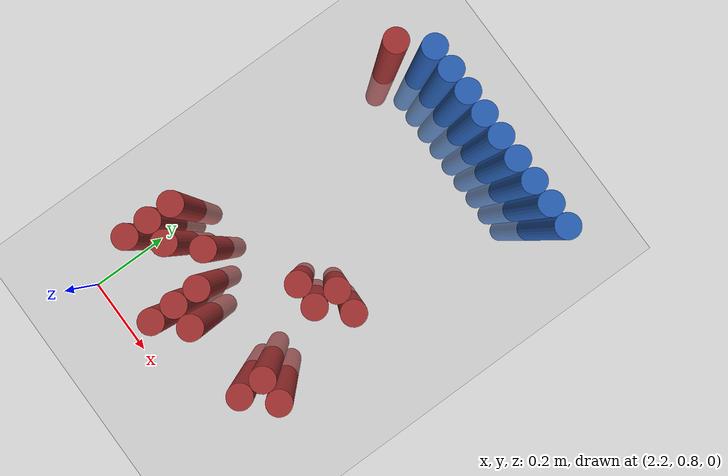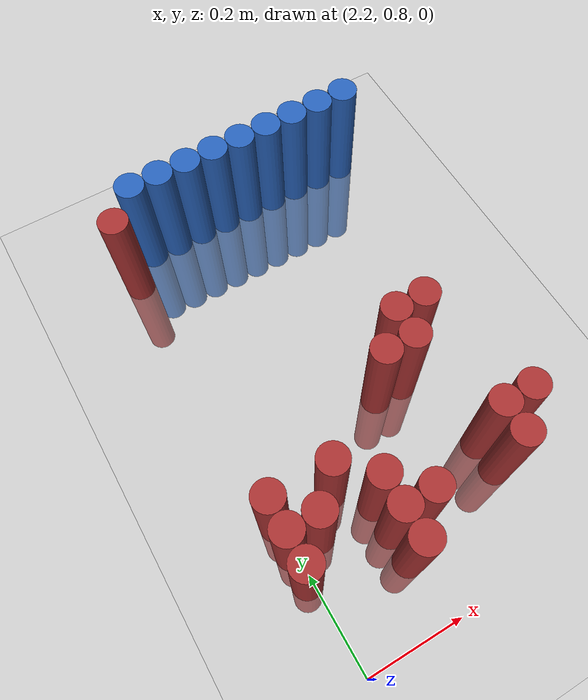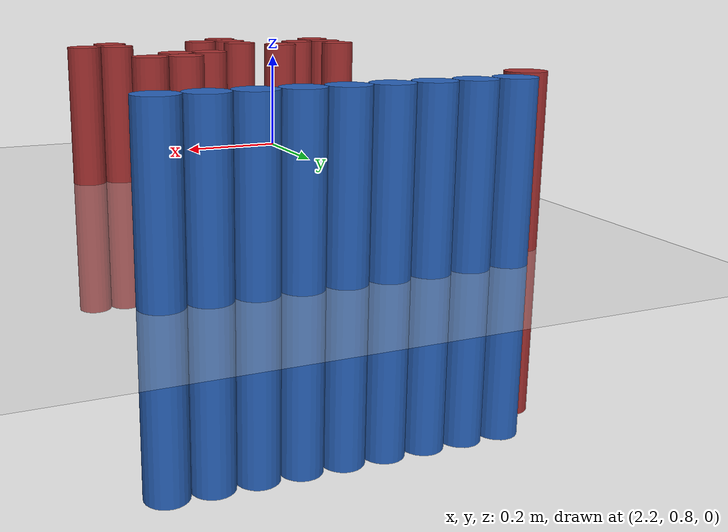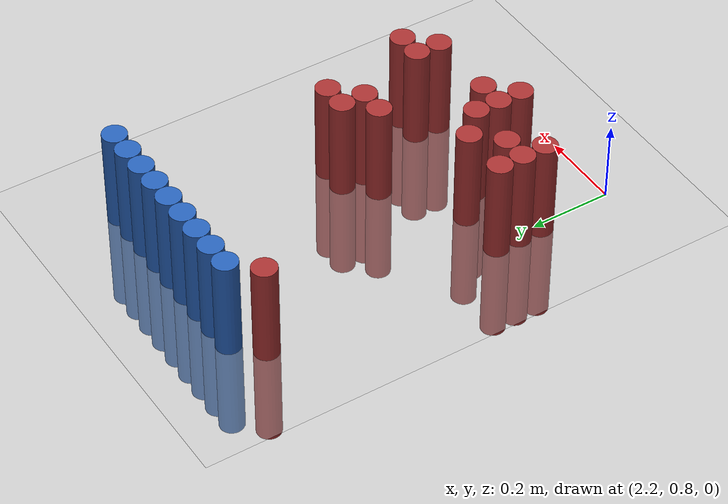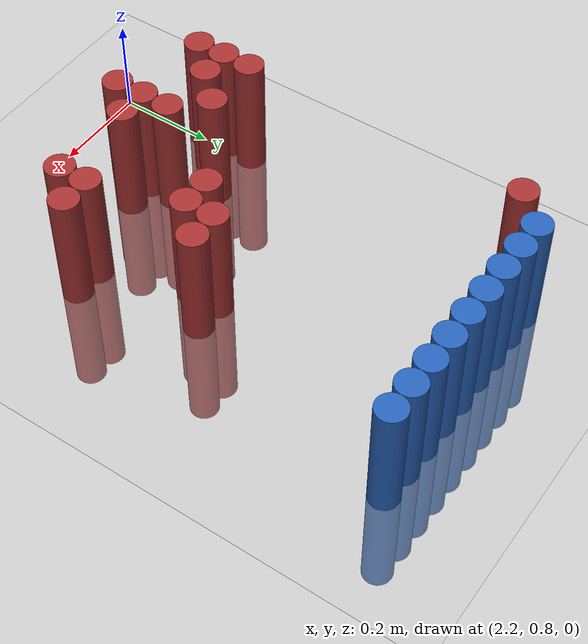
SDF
<sdf version="1.6">
 <world name="default">
  <model name="ground_plane">
   <static>1</static>
   <link name="link">
    <collision name="collision">
     <geometry><plane><normal>0 0 1</normal><size>100 100</size></plane></geometry>
     <surface><friction><ode><mu>100</mu><mu2>50</mu2></ode></friction></surface>
    </collision>
    <visual name="visual">
     <cast_shadows>0</cast_shadows>
     <geometry><plane><normal>0 0 1</normal><size>100 100</size></plane></geometry>
     <material>
      <script><uri>file://media/materials/scripts/gazebo.material</uri><name>Gazebo/Grey</name></script>
     </material>
    </visual>
   </link>
  </model>
  <model name="unit_cylinder_98">
   <static>1</static>
   <pose>2.250000 1.770000 0.000000 0.000000 0.000000 0.000000</pose>
   <link name="link">
    <inertial>
     <mass>1</mass>
     <inertia><ixx>0.145833</ixx><ixy>0</ixy><ixz>0</ixz><iyy>0.145833</iyy><iyz>0</iyz><izz>0.125</izz></inertia>
    </inertial>
    <collision name="collision">
     <geometry><cylinder><radius>0.030000</radius><length>0.5</length></cylinder></geometry>
    </collision>
    <visual name="visual">
     <geometry><cylinder><radius>0.030000</radius><length>0.5</length></cylinder></geometry>
     <material>
      <ambient>0.152000 0.379000 0.720000 1</ambient>
      <diffuse>0.152000 0.379000 0.720000 1</diffuse>
     </material>
     <material>
      <script><name>Gazebo/Grey</name><uri>file://media/materials/scripts/gazebo.material</uri></script>
     </material>
    </visual>
   </link>
  </model>
  <model name="unit_cylinder_99">
   <static>1</static>
   <pose>2.310000 1.770000 0.000000 0.000000 0.000000 0.000000</pose>
   <link name="link">
    <inertial>
     <mass>1</mass>
     <inertia><ixx>0.145833</ixx><ixy>0</ixy><ixz>0</ixz><iyy>0.145833</iyy><iyz>0</iyz><izz>0.125</izz></inertia>
    </inertial>
    <collision name="collision">
     <geometry><cylinder><radius>0.030000</radius><length>0.5</length></cylinder></geometry>
    </collision>
    <visual name="visual">
     <geometry><cylinder><radius>0.030000</radius><length>0.5</length></cylinder></geometry>
     <material>
      <ambient>0.152000 0.379000 0.720000 1</ambient>
      <diffuse>0.152000 0.379000 0.720000 1</diffuse>
     </material>
     <material>
      <script><name>Gazebo/Grey</name><uri>file://media/materials/scripts/gazebo.material</uri></script>
     </material>
    </visual>
   </link>
  </model>
  <model name="unit_cylinder_100">
   <static>1</static>
   <pose>2.370000 1.770000 0.000000 0.000000 0.000000 0.000000</pose>
   <link name="link">
    <inertial>
     <mass>1</mass>
     <inertia><ixx>0.145833</ixx><ixy>0</ixy><ixz>0</ixz><iyy>0.145833</iyy><iyz>0</iyz><izz>0.125</izz></inertia>
    </inertial>
    <collision name="collision">
     <geometry><cylinder><radius>0.030000</radius><length>0.5</length></cylinder></geometry>
    </collision>
    <visual name="visual">
     <geometry><cylinder><radius>0.030000</radius><length>0.5</length></cylinder></geometry>
     <material>
      <ambient>0.152000 0.379000 0.720000 1</ambient>
      <diffuse>0.152000 0.379000 0.720000 1</diffuse>
     </material>
     <material>
      <script><name>Gazebo/Grey</name><uri>file://media/materials/scripts/gazebo.material</uri></script>
     </material>
    </visual>
   </link>
  </model>
  <model name="unit_cylinder_101">
   <static>1</static>
   <pose>2.430000 1.770000 0.000000 0.000000 0.000000 0.000000</pose>
   <link name="link">
    <inertial>
     <mass>1</mass>
     <inertia><ixx>0.145833</ixx><ixy>0</ixy><ixz>0</ixz><iyy>0.145833</iyy><iyz>0</iyz><izz>0.125</izz></inertia>
    </inertial>
    <collision name="collision">
     <geometry><cylinder><radius>0.030000</radius><length>0.5</length></cylinder></geometry>
    </collision>
    <visual name="visual">
     <geometry><cylinder><radius>0.030000</radius><length>0.5</length></cylinder></geometry>
     <material>
      <ambient>0.152000 0.379000 0.720000 1</ambient>
      <diffuse>0.152000 0.379000 0.720000 1</diffuse>
     </material>
     <material>
      <script><name>Gazebo/Grey</name><uri>file://media/materials/scripts/gazebo.material</uri></script>
     </material>
    </visual>
   </link>
  </model>
  <model name="unit_cylinder_102">
   <static>1</static>
   <pose>2.490000 1.770000 0.000000 0.000000 0.000000 0.000000</pose>
   <link name="link">
    <inertial>
     <mass>1</mass>
     <inertia><ixx>0.145833</ixx><ixy>0</ixy><ixz>0</ixz><iyy>0.145833</iyy><iyz>0</iyz><izz>0.125</izz></inertia>
    </inertial>
    <collision name="collision">
     <geometry><cylinder><radius>0.030000</radius><length>0.5</length></cylinder></geometry>
    </collision>
    <visual name="visual">
     <geometry><cylinder><radius>0.030000</radius><length>0.5</length></cylinder></geometry>
     <material>
      <ambient>0.152000 0.379000 0.720000 1</ambient>
      <diffuse>0.152000 0.379000 0.720000 1</diffuse>
     </material>
     <material>
      <script><name>Gazebo/Grey</name><uri>file://media/materials/scripts/gazebo.material</uri></script>
     </material>
    </visual>
   </link>
  </model>
  <model name="unit_cylinder_103">
   <static>1</static>
   <pose>2.550000 1.770000 0.000000 0.000000 0.000000 0.000000</pose>
   <link name="link">
    <inertial>
     <mass>1</mass>
     <inertia><ixx>0.145833</ixx><ixy>0</ixy><ixz>0</ixz><iyy>0.145833</iyy><iyz>0</iyz><izz>0.125</izz></inertia>
    </inertial>
    <collision name="collision">
     <geometry><cylinder><radius>0.030000</radius><length>0.5</length></cylinder></geometry>
    </collision>
    <visual name="visual">
     <geometry><cylinder><radius>0.030000</radius><length>0.5</length></cylinder></geometry>
     <material>
      <ambient>0.152000 0.379000 0.720000 1</ambient>
      <diffuse>0.152000 0.379000 0.720000 1</diffuse>
     </material>
     <material>
      <script><name>Gazebo/Grey</name><uri>file://media/materials/scripts/gazebo.material</uri></script>
     </material>
    </visual>
   </link>
  </model>
  <model name="unit_cylinder_104">
   <static>1</static>
   <pose>2.610000 1.770000 0.000000 0.000000 0.000000 0.000000</pose>
   <link name="link">
    <inertial>
     <mass>1</mass>
     <inertia><ixx>0.145833</ixx><ixy>0</ixy><ixz>0</ixz><iyy>0.145833</iyy><iyz>0</iyz><izz>0.125</izz></inertia>
    </inertial>
    <collision name="collision">
     <geometry><cylinder><radius>0.030000</radius><length>0.5</length></cylinder></geometry>
    </collision>
    <visual name="visual">
     <geometry><cylinder><radius>0.030000</radius><length>0.5</length></cylinder></geometry>
     <material>
      <ambient>0.152000 0.379000 0.720000 1</ambient>
      <diffuse>0.152000 0.379000 0.720000 1</diffuse>
     </material>
     <material>
      <script><name>Gazebo/Grey</name><uri>file://media/materials/scripts/gazebo.material</uri></script>
     </material>
    </visual>
   </link>
  </model>
  <model name="unit_cylinder_105">
   <static>1</static>
   <pose>2.670000 1.770000 0.000000 0.000000 0.000000 0.000000</pose>
   <link name="link">
    <inertial>
     <mass>1</mass>
     <inertia><ixx>0.145833</ixx><ixy>0</ixy><ixz>0</ixz><iyy>0.145833</iyy><iyz>0</iyz><izz>0.125</izz></inertia>
    </inertial>
    <collision name="collision">
     <geometry><cylinder><radius>0.030000</radius><length>0.5</length></cylinder></geometry>
    </collision>
    <visual name="visual">
     <geometry><cylinder><radius>0.030000</radius><length>0.5</length></cylinder></geometry>
     <material>
      <ambient>0.152000 0.379000 0.720000 1</ambient>
      <diffuse>0.152000 0.379000 0.720000 1</diffuse>
     </material>
     <material>
      <script><name>Gazebo/Grey</name><uri>file://media/materials/scripts/gazebo.material</uri></script>
     </material>
    </visual>
   </link>
  </model>
  <model name="unit_cylinder_106">
   <static>1</static>
   <pose>2.730000 1.770000 0.000000 0.000000 0.000000 0.000000</pose>
   <link name="link">
    <inertial>
     <mass>1</mass>
     <inertia><ixx>0.145833</ixx><ixy>0</ixy><ixz>0</ixz><iyy>0.145833</iyy><iyz>0</iyz><izz>0.125</izz></inertia>
    </inertial>
    <collision name="collision">
     <geometry><cylinder><radius>0.030000</radius><length>0.5</length></cylinder></geometry>
    </collision>
    <visual name="visual">
     <geometry><cylinder><radius>0.030000</radius><length>0.5</length></cylinder></geometry>
     <material>
      <ambient>0.152000 0.379000 0.720000 1</ambient>
      <diffuse>0.152000 0.379000 0.720000 1</diffuse>
     </material>
     <material>
      <script><name>Gazebo/Grey</name><uri>file://media/materials/scripts/gazebo.material</uri></script>
     </material>
    </visual>
   </link>
  </model>
  <model name="unit_cylinder_127">
   <static>1</static>
   <pose>2.190000 1.710000 0.000000 0.000000 0.000000 0.000000</pose>
   <link name="link">
    <inertial>
     <mass>1</mass>
     <inertia><ixx>0.145833</ixx><ixy>0</ixy><ixz>0</ixz><iyy>0.145833</iyy><iyz>0</iyz><izz>0.125</izz></inertia>
    </inertial>
    <collision name="collision">
     <geometry><cylinder><radius>0.030000</radius><length>0.5</length></cylinder></geometry>
    </collision>
    <visual name="visual">
     <geometry><cylinder><radius>0.030000</radius><length>0.5</length></cylinder></geometry>
     <material>
      <ambient>0.648000 0.192000 0.192000 1</ambient>
      <diffuse>0.648000 0.192000 0.192000 1</diffuse>
     </material>
     <material>
      <script><name>Gazebo/Grey</name><uri>file://media/materials/scripts/gazebo.material</uri></script>
     </material>
    </visual>
   </link>
  </model>
  <model name="unit_cylinder_129">
   <static>1</static>
   <pose>2.550000 1.290000 0.000000 0.000000 0.000000 0.000000</pose>
   <link name="link">
    <inertial>
     <mass>1</mass>
     <inertia><ixx>0.145833</ixx><ixy>0</ixy><ixz>0</ixz><iyy>0.145833</iyy><iyz>0</iyz><izz>0.125</izz></inertia>
    </inertial>
    <collision name="collision">
     <geometry><cylinder><radius>0.030000</radius><length>0.5</length></cylinder></geometry>
    </collision>
    <visual name="visual">
     <geometry><cylinder><radius>0.030000</radius><length>0.5</length></cylinder></geometry>
     <material>
      <ambient>0.648000 0.192000 0.192000 1</ambient>
      <diffuse>0.648000 0.192000 0.192000 1</diffuse>
     </material>
     <material>
      <script><name>Gazebo/Grey</name><uri>file://media/materials/scripts/gazebo.material</uri></script>
     </material>
    </visual>
   </link>
  </model>
  <model name="unit_cylinder_130">
   <static>1</static>
   <pose>2.610000 1.290000 0.000000 0.000000 0.000000 0.000000</pose>
   <link name="link">
    <inertial>
     <mass>1</mass>
     <inertia><ixx>0.145833</ixx><ixy>0</ixy><ixz>0</ixz><iyy>0.145833</iyy><iyz>0</iyz><izz>0.125</izz></inertia>
    </inertial>
    <collision name="collision">
     <geometry><cylinder><radius>0.030000</radius><length>0.5</length></cylinder></geometry>
    </collision>
    <visual name="visual">
     <geometry><cylinder><radius>0.030000</radius><length>0.5</length></cylinder></geometry>
     <material>
      <ambient>0.648000 0.192000 0.192000 1</ambient>
      <diffuse>0.648000 0.192000 0.192000 1</diffuse>
     </material>
     <material>
      <script><name>Gazebo/Grey</name><uri>file://media/materials/scripts/gazebo.material</uri></script>
     </material>
    </visual>
   </link>
  </model>
  <model name="unit_cylinder_131">
   <static>1</static>
   <pose>2.490000 1.230000 0.000000 0.000000 0.000000 0.000000</pose>
   <link name="link">
    <inertial>
     <mass>1</mass>
     <inertia><ixx>0.145833</ixx><ixy>0</ixy><ixz>0</ixz><iyy>0.145833</iyy><iyz>0</iyz><izz>0.125</izz></inertia>
    </inertial>
    <collision name="collision">
     <geometry><cylinder><radius>0.030000</radius><length>0.5</length></cylinder></geometry>
    </collision>
    <visual name="visual">
     <geometry><cylinder><radius>0.030000</radius><length>0.5</length></cylinder></geometry>
     <material>
      <ambient>0.648000 0.192000 0.192000 1</ambient>
      <diffuse>0.648000 0.192000 0.192000 1</diffuse>
     </material>
     <material>
      <script><name>Gazebo/Grey</name><uri>file://media/materials/scripts/gazebo.material</uri></script>
     </material>
    </visual>
   </link>
  </model>
  <model name="unit_cylinder_132">
   <static>1</static>
   <pose>2.550000 1.230000 0.000000 0.000000 0.000000 0.000000</pose>
   <link name="link">
    <inertial>
     <mass>1</mass>
     <inertia><ixx>0.145833</ixx><ixy>0</ixy><ixz>0</ixz><iyy>0.145833</iyy><iyz>0</iyz><izz>0.125</izz></inertia>
    </inertial>
    <collision name="collision">
     <geometry><cylinder><radius>0.030000</radius><length>0.5</length></cylinder></geometry>
    </collision>
    <visual name="visual">
     <geometry><cylinder><radius>0.030000</radius><length>0.5</length></cylinder></geometry>
     <material>
      <ambient>0.648000 0.192000 0.192000 1</ambient>
      <diffuse>0.648000 0.192000 0.192000 1</diffuse>
     </material>
     <material>
      <script><name>Gazebo/Grey</name><uri>file://media/materials/scripts/gazebo.material</uri></script>
     </material>
    </visual>
   </link>
  </model>
  <model name="unit_cylinder_133">
   <static>1</static>
   <pose>2.190000 1.110000 0.000000 0.000000 0.000000 0.000000</pose>
   <link name="link">
    <inertial>
     <mass>1</mass>
     <inertia><ixx>0.145833</ixx><ixy>0</ixy><ixz>0</ixz><iyy>0.145833</iyy><iyz>0</iyz><izz>0.125</izz></inertia>
    </inertial>
    <collision name="collision">
     <geometry><cylinder><radius>0.030000</radius><length>0.5</length></cylinder></geometry>
    </collision>
    <visual name="visual">
     <geometry><cylinder><radius>0.030000</radius><length>0.5</length></cylinder></geometry>
     <material>
      <ambient>0.648000 0.192000 0.192000 1</ambient>
      <diffuse>0.648000 0.192000 0.192000 1</diffuse>
     </material>
     <material>
      <script><name>Gazebo/Grey</name><uri>file://media/materials/scripts/gazebo.material</uri></script>
     </material>
    </visual>
   </link>
  </model>
  <model name="unit_cylinder_134">
   <static>1</static>
   <pose>2.310000 1.110000 0.000000 0.000000 0.000000 0.000000</pose>
   <link name="link">
    <inertial>
     <mass>1</mass>
     <inertia><ixx>0.145833</ixx><ixy>0</ixy><ixz>0</ixz><iyy>0.145833</iyy><iyz>0</iyz><izz>0.125</izz></inertia>
    </inertial>
    <collision name="collision">
     <geometry><cylinder><radius>0.030000</radius><length>0.5</length></cylinder></geometry>
    </collision>
    <visual name="visual">
     <geometry><cylinder><radius>0.030000</radius><length>0.5</length></cylinder></geometry>
     <material>
      <ambient>0.648000 0.192000 0.192000 1</ambient>
      <diffuse>0.648000 0.192000 0.192000 1</diffuse>
     </material>
     <material>
      <script><name>Gazebo/Grey</name><uri>file://media/materials/scripts/gazebo.material</uri></script>
     </material>
    </visual>
   </link>
  </model>
  <model name="unit_cylinder_135">
   <static>1</static>
   <pose>2.190000 1.050000 0.000000 0.000000 0.000000 0.000000</pose>
   <link name="link">
    <inertial>
     <mass>1</mass>
     <inertia><ixx>0.145833</ixx><ixy>0</ixy><ixz>0</ixz><iyy>0.145833</iyy><iyz>0</iyz><izz>0.125</izz></inertia>
    </inertial>
    <collision name="collision">
     <geometry><cylinder><radius>0.030000</radius><length>0.5</length></cylinder></geometry>
    </collision>
    <visual name="visual">
     <geometry><cylinder><radius>0.030000</radius><length>0.5</length></cylinder></geometry>
     <material>
      <ambient>0.648000 0.192000 0.192000 1</ambient>
      <diffuse>0.648000 0.192000 0.192000 1</diffuse>
     </material>
     <material>
      <script><name>Gazebo/Grey</name><uri>file://media/materials/scripts/gazebo.material</uri></script>
     </material>
    </visual>
   </link>
  </model>
  <model name="unit_cylinder_136">
   <static>1</static>
   <pose>2.250000 1.050000 0.000000 0.000000 0.000000 0.000000</pose>
   <link name="link">
    <inertial>
     <mass>1</mass>
     <inertia><ixx>0.145833</ixx><ixy>0</ixy><ixz>0</ixz><iyy>0.145833</iyy><iyz>0</iyz><izz>0.125</izz></inertia>
    </inertial>
    <collision name="collision">
     <geometry><cylinder><radius>0.030000</radius><length>0.5</length></cylinder></geometry>
    </collision>
    <visual name="visual">
     <geometry><cylinder><radius>0.030000</radius><length>0.5</length></cylinder></geometry>
     <material>
      <ambient>0.648000 0.192000 0.192000 1</ambient>
      <diffuse>0.648000 0.192000 0.192000 1</diffuse>
     </material>
     <material>
      <script><name>Gazebo/Grey</name><uri>file://media/materials/scripts/gazebo.material</uri></script>
     </material>
    </visual>
   </link>
  </model>
  <model name="unit_cylinder_137">
   <static>1</static>
   <pose>2.370000 1.050000 0.000000 0.000000 0.000000 0.000000</pose>
   <link name="link">
    <inertial>
     <mass>1</mass>
     <inertia><ixx>0.145833</ixx><ixy>0</ixy><ixz>0</ixz><iyy>0.145833</iyy><iyz>0</iyz><izz>0.125</izz></inertia>
    </inertial>
    <collision name="collision">
     <geometry><cylinder><radius>0.030000</radius><length>0.5</length></cylinder></geometry>
    </collision>
    <visual name="visual">
     <geometry><cylinder><radius>0.030000</radius><length>0.5</length></cylinder></geometry>
     <material>
      <ambient>0.648000 0.192000 0.192000 1</ambient>
      <diffuse>0.648000 0.192000 0.192000 1</diffuse>
     </material>
     <material>
      <script><name>Gazebo/Grey</name><uri>file://media/materials/scripts/gazebo.material</uri></script>
     </material>
    </visual>
   </link>
  </model>
  <model name="unit_cylinder_138">
   <static>1</static>
   <pose>2.610000 1.050000 0.000000 0.000000 0.000000 0.000000</pose>
   <link name="link">
    <inertial>
     <mass>1</mass>
     <inertia><ixx>0.145833</ixx><ixy>0</ixy><ixz>0</ixz><iyy>0.145833</iyy><iyz>0</iyz><izz>0.125</izz></inertia>
    </inertial>
    <collision name="collision">
     <geometry><cylinder><radius>0.030000</radius><length>0.5</length></cylinder></geometry>
    </collision>
    <visual name="visual">
     <geometry><cylinder><radius>0.030000</radius><length>0.5</length></cylinder></geometry>
     <material>
      <ambient>0.648000 0.192000 0.192000 1</ambient>
      <diffuse>0.648000 0.192000 0.192000 1</diffuse>
     </material>
     <material>
      <script><name>Gazebo/Grey</name><uri>file://media/materials/scripts/gazebo.material</uri></script>
     </material>
    </visual>
   </link>
  </model>
  <model name="unit_cylinder_139">
   <static>1</static>
   <pose>2.670000 1.050000 0.000000 0.000000 0.000000 0.000000</pose>
   <link name="link">
    <inertial>
     <mass>1</mass>
     <inertia><ixx>0.145833</ixx><ixy>0</ixy><ixz>0</ixz><iyy>0.145833</iyy><iyz>0</iyz><izz>0.125</izz></inertia>
    </inertial>
    <collision name="collision">
     <geometry><cylinder><radius>0.030000</radius><length>0.5</length></cylinder></geometry>
    </collision>
    <visual name="visual">
     <geometry><cylinder><radius>0.030000</radius><length>0.5</length></cylinder></geometry>
     <material>
      <ambient>0.648000 0.192000 0.192000 1</ambient>
      <diffuse>0.648000 0.192000 0.192000 1</diffuse>
     </material>
     <material>
      <script><name>Gazebo/Grey</name><uri>file://media/materials/scripts/gazebo.material</uri></script>
     </material>
    </visual>
   </link>
  </model>
  <model name="unit_cylinder_143">
   <static>1</static>
   <pose>2.190000 0.990000 0.000000 0.000000 0.000000 0.000000</pose>
   <link name="link">
    <inertial>
     <mass>1</mass>
     <inertia><ixx>0.145833</ixx><ixy>0</ixy><ixz>0</ixz><iyy>0.145833</iyy><iyz>0</iyz><izz>0.125</izz></inertia>
    </inertial>
    <collision name="collision">
     <geometry><cylinder><radius>0.030000</radius><length>0.5</length></cylinder></geometry>
    </collision>
    <visual name="visual">
     <geometry><cylinder><radius>0.030000</radius><length>0.5</length></cylinder></geometry>
     <material>
      <ambient>0.648000 0.192000 0.192000 1</ambient>
      <diffuse>0.648000 0.192000 0.192000 1</diffuse>
     </material>
     <material>
      <script><name>Gazebo/Grey</name><uri>file://media/materials/scripts/gazebo.material</uri></script>
     </material>
    </visual>
   </link>
  </model>
  <model name="unit_cylinder_144">
   <static>1</static>
   <pose>2.370000 0.990000 0.000000 0.000000 0.000000 0.000000</pose>
   <link name="link">
    <inertial>
     <mass>1</mass>
     <inertia><ixx>0.145833</ixx><ixy>0</ixy><ixz>0</ixz><iyy>0.145833</iyy><iyz>0</iyz><izz>0.125</izz></inertia>
    </inertial>
    <collision name="collision">
     <geometry><cylinder><radius>0.030000</radius><length>0.5</length></cylinder></geometry>
    </collision>
    <visual name="visual">
     <geometry><cylinder><radius>0.030000</radius><length>0.5</length></cylinder></geometry>
     <material>
      <ambient>0.648000 0.192000 0.192000 1</ambient>
      <diffuse>0.648000 0.192000 0.192000 1</diffuse>
     </material>
     <material>
      <script><name>Gazebo/Grey</name><uri>file://media/materials/scripts/gazebo.material</uri></script>
     </material>
    </visual>
   </link>
  </model>
  <model name="unit_cylinder_145">
   <static>1</static>
   <pose>2.430000 0.990000 0.000000 0.000000 0.000000 0.000000</pose>
   <link name="link">
    <inertial>
     <mass>1</mass>
     <inertia><ixx>0.145833</ixx><ixy>0</ixy><ixz>0</ixz><iyy>0.145833</iyy><iyz>0</iyz><izz>0.125</izz></inertia>
    </inertial>
    <collision name="collision">
     <geometry><cylinder><radius>0.030000</radius><length>0.5</length></cylinder></geometry>
    </collision>
    <visual name="visual">
     <geometry><cylinder><radius>0.030000</radius><length>0.5</length></cylinder></geometry>
     <material>
      <ambient>0.648000 0.192000 0.192000 1</ambient>
      <diffuse>0.648000 0.192000 0.192000 1</diffuse>
     </material>
     <material>
      <script><name>Gazebo/Grey</name><uri>file://media/materials/scripts/gazebo.material</uri></script>
     </material>
    </visual>
   </link>
  </model>
  <model name="unit_cylinder_146">
   <static>1</static>
   <pose>2.610000 0.990000 0.000000 0.000000 0.000000 0.000000</pose>
   <link name="link">
    <inertial>
     <mass>1</mass>
     <inertia><ixx>0.145833</ixx><ixy>0</ixy><ixz>0</ixz><iyy>0.145833</iyy><iyz>0</iyz><izz>0.125</izz></inertia>
    </inertial>
    <collision name="collision">
     <geometry><cylinder><radius>0.030000</radius><length>0.5</length></cylinder></geometry>
    </collision>
    <visual name="visual">
     <geometry><cylinder><radius>0.030000</radius><length>0.5</length></cylinder></geometry>
     <material>
      <ambient>0.648000 0.192000 0.192000 1</ambient>
      <diffuse>0.648000 0.192000 0.192000 1</diffuse>
     </material>
     <material>
      <script><name>Gazebo/Grey</name><uri>file://media/materials/scripts/gazebo.material</uri></script>
     </material>
    </visual>
   </link>
  </model>
  <model name="unit_cylinder_148">
   <static>1</static>
   <pose>2.370000 0.930000 0.000000 0.000000 0.000000 0.000000</pose>
   <link name="link">
    <inertial>
     <mass>1</mass>
     <inertia><ixx>0.145833</ixx><ixy>0</ixy><ixz>0</ixz><iyy>0.145833</iyy><iyz>0</iyz><izz>0.125</izz></inertia>
    </inertial>
    <collision name="collision">
     <geometry><cylinder><radius>0.030000</radius><length>0.5</length></cylinder></geometry>
    </collision>
    <visual name="visual">
     <geometry><cylinder><radius>0.030000</radius><length>0.5</length></cylinder></geometry>
     <material>
      <ambient>0.648000 0.192000 0.192000 1</ambient>
      <diffuse>0.648000 0.192000 0.192000 1</diffuse>
     </material>
     <material>
      <script><name>Gazebo/Grey</name><uri>file://media/materials/scripts/gazebo.material</uri></script>
     </material>
    </visual>
   </link>
  </model>
 </world>
</sdf>
